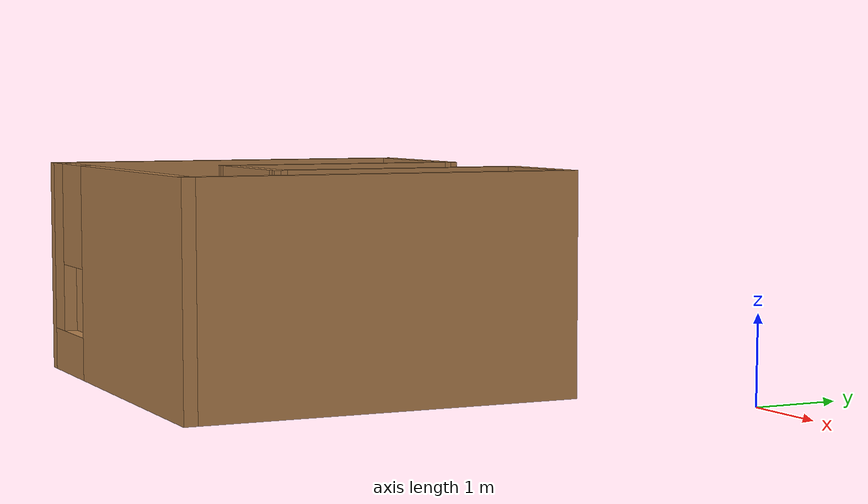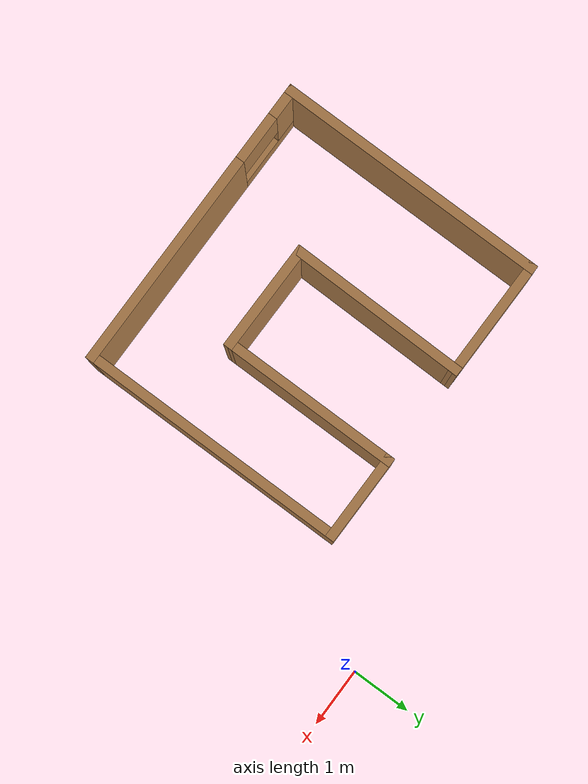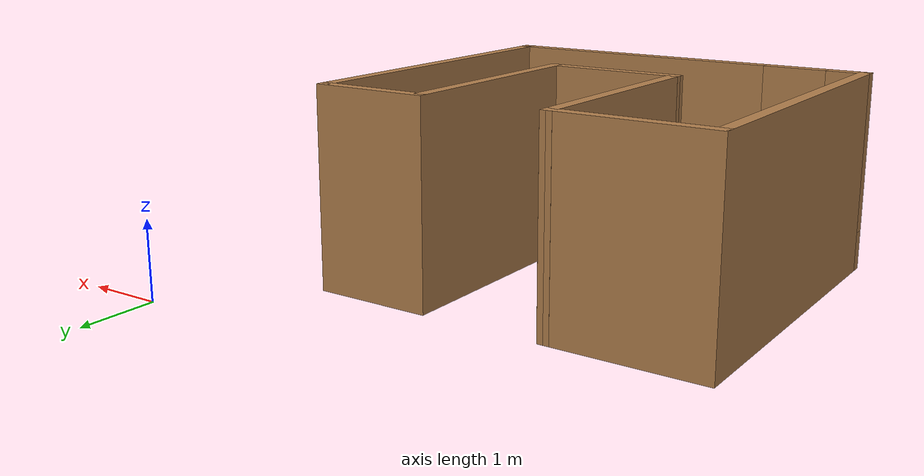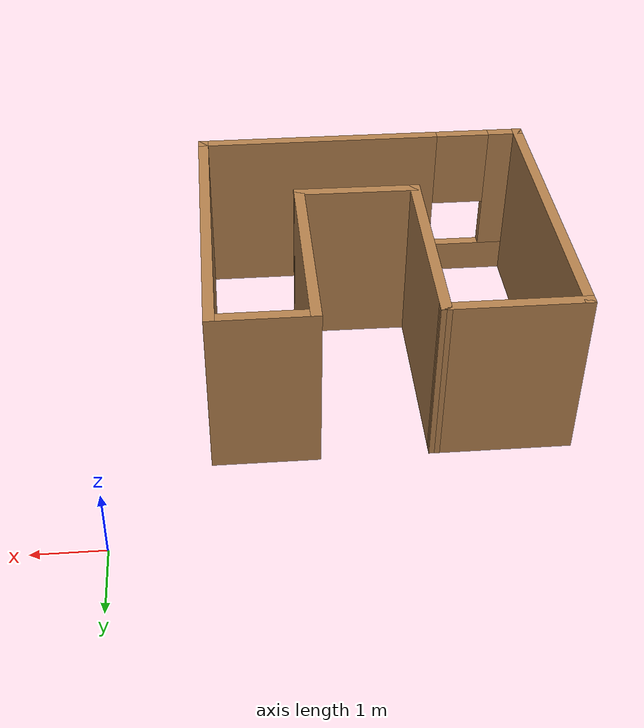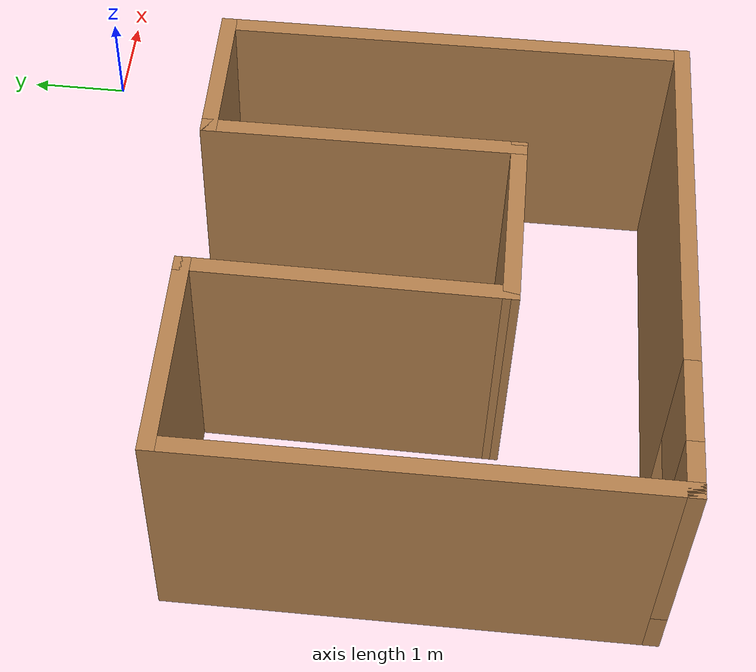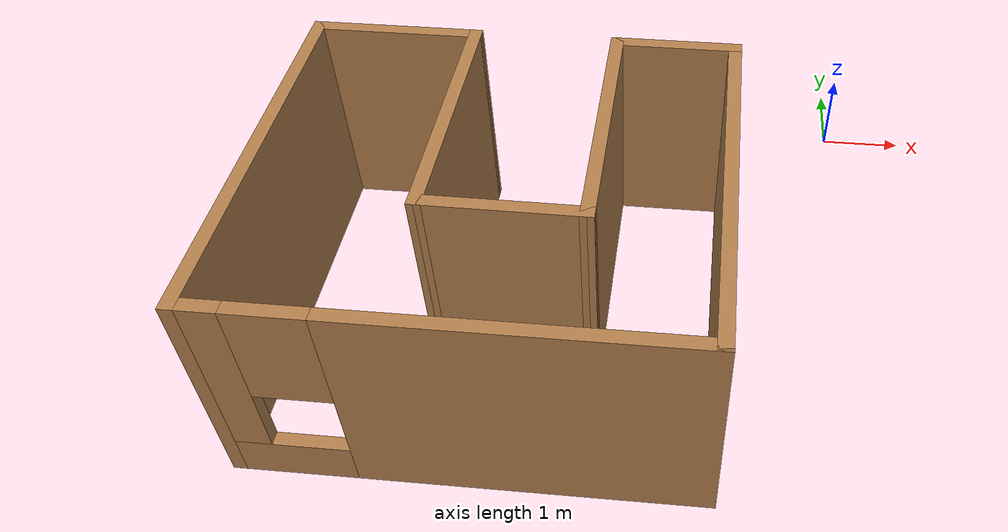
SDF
<?xml version='1.0'?>
<sdf version='1.6'>
  <model name='mybuilding'>
    <pose frame=''>-3.845 -3.68461 0 0 -0 0</pose>
    <link name='Wall_10'>
      <pose frame=''>0 -2.17539 0 0 -0 3.14159</pose>
      <visual name='Wall_10_Visual_0'>
        <pose frame=''>-0.667383 0 1.25 0 -0 0</pose>
        <geometry>
          <box>
            <size>3.66523 0.15 2.5</size>
          </box>
        </geometry>
        <material>
          <script>
            <uri>file://media/materials/scripts/gazebo.material</uri>
            <name>Gazebo/Wood</name>
          </script>
          <ambient>0.760784 0.662745 0.627451 1</ambient>
        </material>
        <meta>
          <layer>0</layer>
        </meta>
      </visual>
      <collision name='Wall_10_Collision_0'>
        <geometry>
          <box>
            <size>3.66523 0.15 2.5</size>
          </box>
        </geometry>
        <pose frame=''>-0.667383 0 1.25 0 -0 0</pose>
      </collision>
      <visual name='Wall_10_Visual_1'>
        <pose frame=''>1.83262 0 0.25 0 -0 0</pose>
        <geometry>
          <box>
            <size>1.33477 0.15 0.5</size>
          </box>
        </geometry>
        <material>
          <script>
            <uri>file://media/materials/scripts/gazebo.material</uri>
            <name>Gazebo/Wood</name>
          </script>
          <ambient>0.760784 0.662745 0.627451 1</ambient>
        </material>
        <meta>
          <layer>0</layer>
        </meta>
      </visual>
      <collision name='Wall_10_Collision_1'>
        <geometry>
          <box>
            <size>1.33477 0.15 0.5</size>
          </box>
        </geometry>
        <pose frame=''>1.83262 0 0.25 0 -0 0</pose>
      </collision>
      <visual name='Wall_10_Visual_2'>
        <pose frame=''>2.23262 0 1.5 0 -0 0</pose>
        <geometry>
          <box>
            <size>0.534766 0.15 2</size>
          </box>
        </geometry>
        <material>
          <script>
            <uri>file://media/materials/scripts/gazebo.material</uri>
            <name>Gazebo/Wood</name>
          </script>
          <ambient>0.760784 0.662745 0.627451 1</ambient>
        </material>
        <meta>
          <layer>0</layer>
        </meta>
      </visual>
      <collision name='Wall_10_Collision_2'>
        <geometry>
          <box>
            <size>0.534766 0.15 2</size>
          </box>
        </geometry>
        <pose frame=''>2.23262 0 1.5 0 -0 0</pose>
      </collision>
      <visual name='Wall_10_Visual_3'>
        <pose frame=''>1.56523 0 1.9 0 -0 0</pose>
        <geometry>
          <box>
            <size>0.8 0.15 1.2</size>
          </box>
        </geometry>
        <material>
          <script>
            <uri>file://media/materials/scripts/gazebo.material</uri>
            <name>Gazebo/Wood</name>
          </script>
          <ambient>0.760784 0.662745 0.627451 1</ambient>
        </material>
        <meta>
          <layer>0</layer>
        </meta>
      </visual>
      <collision name='Wall_10_Collision_3'>
        <geometry>
          <box>
            <size>0.8 0.15 1.2</size>
          </box>
        </geometry>
        <pose frame=''>1.56523 0 1.9 0 -0 0</pose>
      </collision>
    </link>
    <link name='Wall_11'>
      <collision name='Wall_11_Collision'>
        <geometry>
          <box>
            <size>4.5 0.15 2.5</size>
          </box>
        </geometry>
        <pose frame=''>0 0 1.25 0 -0 0</pose>
      </collision>
      <visual name='Wall_11_Visual'>
        <pose frame=''>0 0 1.25 0 -0 0</pose>
        <geometry>
          <box>
            <size>4.5 0.15 2.5</size>
          </box>
        </geometry>
        <material>
          <script>
            <uri>file://media/materials/scripts/gazebo.material</uri>
            <name>Gazebo/Wood</name>
          </script>
          <ambient>0.760784 0.662745 0.627451 1</ambient>
        </material>
        <meta>
          <layer>0</layer>
        </meta>
      </visual>
      <pose frame=''>-2.425 -0.000394 0 0 -0 1.5708</pose>
    </link>
    <link name='Wall_12'>
      <collision name='Wall_12_Collision'>
        <geometry>
          <box>
            <size>2 0.15 2.5</size>
          </box>
        </geometry>
        <pose frame=''>0 0 1.25 0 -0 0</pose>
      </collision>
      <visual name='Wall_12_Visual'>
        <pose frame=''>0 0 1.25 0 -0 0</pose>
        <geometry>
          <box>
            <size>2 0.15 2.5</size>
          </box>
        </geometry>
        <material>
          <script>
            <uri>file://media/materials/scripts/gazebo.material</uri>
            <name>Gazebo/Wood</name>
          </script>
          <ambient>0.760784 0.662745 0.627451 1</ambient>
        </material>
        <meta>
          <layer>0</layer>
        </meta>
      </visual>
      <pose frame=''>-1.5 2.17461 0 0 -0 0</pose>
    </link>
    <link name='Wall_13'>
      <collision name='Wall_13_Collision'>
        <geometry>
          <box>
            <size>2.99016 0.15 2.5</size>
          </box>
        </geometry>
        <pose frame=''>0 0 1.25 0 -0 0</pose>
      </collision>
      <visual name='Wall_13_Visual'>
        <pose frame=''>0 0 1.25 0 -0 0</pose>
        <geometry>
          <box>
            <size>2.99016 0.15 2.5</size>
          </box>
        </geometry>
        <material>
          <script>
            <uri>file://media/materials/scripts/gazebo.material</uri>
            <name>Gazebo/Wood</name>
          </script>
          <ambient>0.760784 0.662745 0.627451 1</ambient>
        </material>
        <meta>
          <layer>0</layer>
        </meta>
      </visual>
      <pose frame=''>-0.59 0.754606 0 0 0 -1.58136</pose>
    </link>
    <link name='Wall_2'>
      <collision name='Wall_2_Collision'>
        <geometry>
          <box>
            <size>1.83003 0.15 2.5</size>
          </box>
        </geometry>
        <pose frame=''>0 0 1.25 0 -0 0</pose>
      </collision>
      <visual name='Wall_2_Visual'>
        <pose frame=''>0 0 1.25 0 -0 0</pose>
        <geometry>
          <box>
            <size>1.83003 0.15 2.5</size>
          </box>
        </geometry>
        <material>
          <script>
            <uri>file://media/materials/scripts/gazebo.material</uri>
            <name>Gazebo/Wood</name>
          </script>
          <ambient>0.760784 0.662745 0.627451 1</ambient>
        </material>
        <meta>
          <layer>0</layer>
        </meta>
      </visual>
      <pose frame=''>0.235 -0.670394 0 0 0 -0.005952</pose>
    </link>
    <link name='Wall_3'>
      <collision name='Wall_3_Collision'>
        <geometry>
          <box>
            <size>3 0.15 2.5</size>
          </box>
        </geometry>
        <pose frame=''>0 0 1.25 0 -0 0</pose>
      </collision>
      <visual name='Wall_3_Visual'>
        <pose frame=''>0 0 1.25 0 -0 0</pose>
        <geometry>
          <box>
            <size>3 0.15 2.5</size>
          </box>
        </geometry>
        <material>
          <script>
            <uri>file://media/materials/scripts/gazebo.material</uri>
            <name>Gazebo/Wood</name>
          </script>
          <ambient>0.760784 0.662745 0.627451 1</ambient>
        </material>
        <meta>
          <layer>0</layer>
        </meta>
      </visual>
      <pose frame=''>1.075 0.749606 0 0 -0 1.5708</pose>
    </link>
    <link name='Wall_4'>
      <collision name='Wall_4_Collision'>
        <geometry>
          <box>
            <size>1.5 0.15 2.5</size>
          </box>
        </geometry>
        <pose frame=''>0 0 1.25 0 -0 0</pose>
      </collision>
      <visual name='Wall_4_Visual'>
        <pose frame=''>0 0 1.25 0 -0 0</pose>
        <geometry>
          <box>
            <size>1.5 0.15 2.5</size>
          </box>
        </geometry>
        <material>
          <script>
            <uri>file://media/materials/scripts/gazebo.material</uri>
            <name>Gazebo/Wood</name>
          </script>
          <ambient>0.760784 0.662745 0.627451 1</ambient>
        </material>
        <meta>
          <layer>0</layer>
        </meta>
      </visual>
      <pose frame=''>1.75 2.17461 0 0 -0 0</pose>
    </link>
    <link name='Wall_5'>
      <collision name='Wall_5_Collision'>
        <geometry>
          <box>
            <size>4.5 0.15 2.5</size>
          </box>
        </geometry>
        <pose frame=''>0 0 1.25 0 -0 0</pose>
      </collision>
      <visual name='Wall_5_Visual'>
        <pose frame=''>0 0 1.25 0 -0 0</pose>
        <geometry>
          <box>
            <size>4.5 0.15 2.5</size>
          </box>
        </geometry>
        <material>
          <script>
            <uri>file://media/materials/scripts/gazebo.material</uri>
            <name>Gazebo/Wood</name>
          </script>
          <ambient>0.921569 0.807843 0.615686 1</ambient>
        </material>
        <meta>
          <layer>0</layer>
        </meta>
      </visual>
      <pose frame=''>2.425 -0.000394 0 0 0 -1.5708</pose>
    </link>
    <static>1</static>
  </model>
</sdf>
